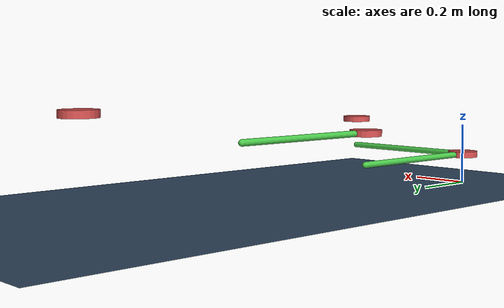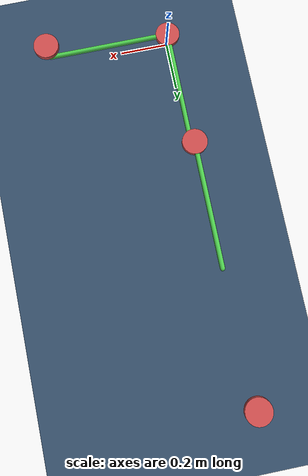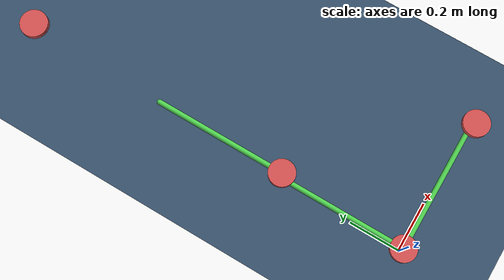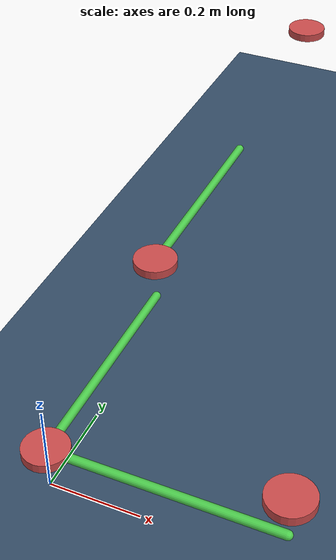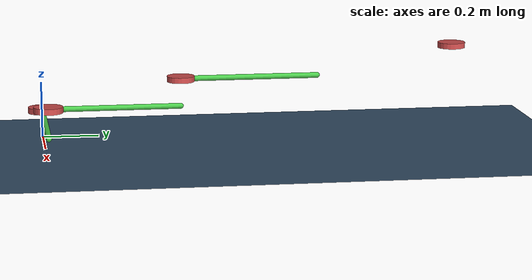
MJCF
<?xml version='1.0' encoding='UTF-8'?>
<mujoco>
  <option gravity="0 0 -9.81" timestep="0.002">
    <flag warmstart="enable"/>
  </option>
  <visual>
    <global offwidth="800" offheight="800"/>
    <quality shadowsize="4096"/>
    <map force="0.1" fogstart="3" fogend="5" znear="0.1" zfar="50"/>
  </visual>
  <asset>
    <texture type="skybox" builtin="gradient" rgb1="0.3 0.5 0.7" rgb2="0 0 0" width="512" height="512"/>
    <material name="arm1" rgba="0.8 0.3 0.3 1"/>
    <material name="arm2" rgba="0.3 0.8 0.3 1"/>
    <material name="arm3" rgba="0.3 0.3 0.8 1"/>
    <material name="groundplane" rgba="0.2 0.3 0.4 1"/>
  </asset>
  <worldbody>
    <light name="spotlight" mode="targetbody" target="world" diffuse=".8 .8 .8" specular="0.3 0.3 0.3" pos="0 -6 4" dir="0 1 -1"/>
    <light name="top" pos="0 0 3" dir="0 0 -1" diffuse="0.6 0.6 0.6" specular="0.3 0.3 0.3"/>
    <geom name="ground" type="plane" material="groundplane" size="5 5 0.1"/>
    <camera name="fixed" pos="0 -3 2" xyaxes="1 0 0 0 0.7 0.7"/>
    <body name="link_1" pos="0.0 0.0 0.1">
      <geom type="cylinder" size="0.05 0.01" material="arm1"/>
      <joint name="joint_1" type="hinge" axis="0 0 1" pos="0 0 -0.05"/>
      <body name="link_2" pos="0.0 0.5 0.1">
        <geom type="cylinder" size="0.05 0.01" material="arm1"/>
        <joint name="joint_2" type="hinge" axis="0 0 1" pos="0 0 -0.05"/>
        <body name="link_4" pos="0.0 1.0 0.1">
          <geom type="cylinder" size="0.05 0.01" material="arm1"/>
          <joint name="joint_4" type="hinge" axis="0 0 1" pos="0 0 -0.05"/>
          <site name="site_4" pos="0 0 0"/>
        </body>
        <geom type="capsule" size="0.01" fromto="0 0 0 0.0 0.5 0" material="arm2"/>
      </body>
      <geom type="capsule" size="0.01" fromto="0 0 0 0.0 0.5 0" material="arm2"/>
      <body name="link_3" pos="0.5 0.0 0.1">
        <geom type="cylinder" size="0.05 0.01" material="arm1"/>
        <joint name="joint_3" type="hinge" axis="0 0 1" pos="0 0 -0.05"/>
      </body>
      <geom type="capsule" size="0.01" fromto="0 0 0 0.5 0.0 0" material="arm2"/>
    </body>
  </worldbody>
  <actuator>
    <motor joint="joint_1" name="motor_joint_1" gear="100" ctrlrange="-0.01 0.01"/>
  </actuator>
</mujoco>
